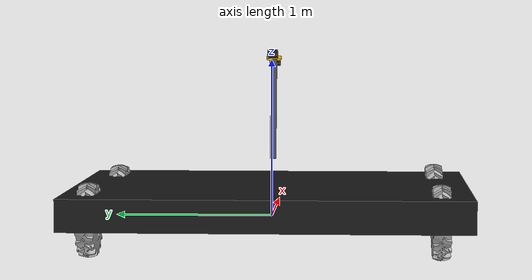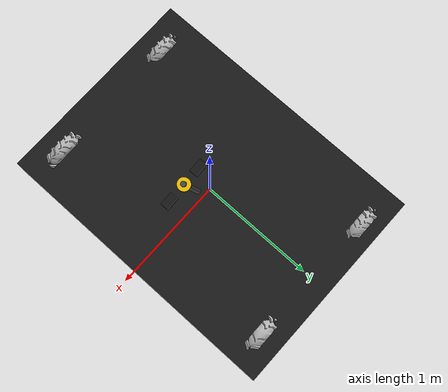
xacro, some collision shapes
<?xml version="1.0"?>
<robot xmlns:xacro="http://www.ros.org/wiki/xacro" name="husky_22">

  <!-- Parametros -->
  <xacro:property name="wheel_radius" value="0.17775" />
  <xacro:property name="wheel_width" value="0.1143" />
  <xacro:property name="wheel_separation" value="0.5709" />
  <xacro:property name="wheel_diameter" value="0.3555" />
  <xacro:property name="base_mass" value="33.855" />
  <xacro:property name="wheel_mass" value="2.6357" />

  <!-- ===================== BASE LINK ===================== -->
  <link name="base_link">
    <inertial>
      <mass value="${base_mass}" />
      <origin xyz="-0.085613 -0.00084 0.238145" rpy="0 0 0" />
      <inertia ixx="2.2343" ixy="0" ixz="0.275174" iyy="3.42518" iyz="0.00239624" izz="2.1241" />
    </inertial>

    <visual name="base">
      <origin xyz="0 0 0" rpy="0 0 1.567" />
      <geometry>
        <mesh filename="package://simple_gazebo_robot/mesh/chassi.dae" scale="0.005 0.005 0.005" />
      </geometry>
      <material name="flat_black">
        <color rgba="0.1 0.1 0.1 1" />
      </material>
    </visual>

    <collision name="collision">

      <origin xyz="0 0 0.1" rpy="0 0 0" />
      <geometry>
        <box size="1.8 2.5 0.2" />
      </geometry>
    </collision>
  </link>

  <!-- ===================== BACK LEFT WHEEL ===================== -->
  <link name="back_left_wheel">
    <inertial>
      <mass value="${wheel_mass}" />
      <origin xyz="0 0 0" rpy="0 0 0" />
      <inertia ixx="0.0246688" ixy="0" ixz="0" iyy="0.0246688" iyz="0" izz="0.0441058" />
    </inertial>

    <visual name="back_left_wheel">
      <origin xyz="0 0 0" rpy="-3.14159 0 0" />
      <geometry>
        <mesh filename="package://simple_gazebo_robot/mesh/roda.dae" scale="0.005 0.005 0.005" />
      </geometry>
      <material name="grey">
        <color rgba="0.7 0.7 0.7 1" />
      </material>
    </visual>

    <collision name="back_left_wheel_collision">
      <origin xyz="0 0 0" rpy="-1.5707 0 0" />
      <geometry>
        <cylinder radius="${wheel_radius}" length="${wheel_width}" />
      </geometry>
    </collision>
  </link>

  <!-- ===================== BACK RIGHT WHEEL ===================== -->
  <link name="back_right_wheel">
    <inertial>
      <mass value="${wheel_mass}" />
      <origin xyz="0 0 0" rpy="0 0 0" />
      <inertia ixx="0.0246688" ixy="0" ixz="0" iyy="0.0246688" iyz="0" izz="0.0441058" />
    </inertial>

    <visual name="back_right_wheel">
      <origin xyz="0 0 0" rpy="-3.14159 0 0" />
      <geometry>
        <mesh filename="package://simple_gazebo_robot/mesh/roda.dae" scale="0.005 0.005 0.005" />
      </geometry>
      <material name="grey">
        <color rgba="0.7 0.7 0.7 1" />
      </material>
    </visual>

    <collision name="back_right_wheel_collision">
      <origin xyz="0 0 0" rpy="-1.5707 0 0" />
      <geometry>
        <cylinder radius="${wheel_radius}" length="${wheel_width}" />
      </geometry>
    </collision>
  </link>

  <!-- ===================== FRONT LEFT WHEEL ===================== -->
  <link name="front_left_wheel">
    <inertial>
      <mass value="${wheel_mass}" />
      <origin xyz="0 0 0" rpy="0 0 0" />
      <inertia ixx="0.0246688" ixy="0" ixz="0" iyy="0.0246688" iyz="0" izz="0.0441058" />
    </inertial>

    <visual name="front_left_wheel">
      <origin xyz="0 0 0" rpy="-3.14159 0 0" />
      <geometry>
        <mesh filename="package://simple_gazebo_robot/mesh/roda.dae" scale="0.005 0.005 0.005" />
      </geometry>
      <material name="grey">
        <color rgba="0.7 0.7 0.7 1" />
      </material>
    </visual>

    <collision name="front_left_wheel_collision">
      <origin xyz="0 0 0" rpy="-1.5707 0 0" />
      <geometry>
        <cylinder radius="${wheel_radius}" length="${wheel_width}" />
      </geometry>
    </collision>
  </link>

  <!-- ===================== FRONT RIGHT WHEEL ===================== -->
  <link name="front_right_wheel">
    <inertial>
      <mass value="${wheel_mass}" />
      <origin xyz="0 0 0" rpy="0 0 0" />
      <inertia ixx="0.0246688" ixy="0" ixz="0" iyy="0.0246688" iyz="0" izz="0.0441058" />
    </inertial>

    <visual name="front_right_wheel">
      <origin xyz="0 0 0" rpy="-3.14159 0 0" />
      <geometry>
        <mesh filename="package://simple_gazebo_robot/mesh/roda.dae" scale="0.005 0.005 0.005" />
      </geometry>
      <material name="grey">
        <color rgba="0.7 0.7 0.7 1" />
      </material>
    </visual>

    <collision name="front_right_wheel_collision">
      <origin xyz="0 0 0" rpy="-1.5707 0 0" />
      <geometry>
        <cylinder radius="${wheel_radius}" length="${wheel_width}" />
      </geometry>
    </collision>
  </link>

  <!-- ===================== JOINTS ===================== -->
  <joint name="back_left_joint" type="continuous">
    <parent link="base_link" />
    <child link="back_left_wheel" />
    <origin xyz="-0.554793 1.09929 0.035" rpy="0 0 0" />
    <axis xyz="0 1 0" />
  </joint>

  <joint name="back_right_joint" type="continuous">
    <parent link="base_link" />
    <child link="back_right_wheel" />
    <origin xyz="-0.58474 -1.05289 0.035" rpy="0 0 0" />
    <axis xyz="0 1 0" />
  </joint>

  <joint name="front_left_joint" type="continuous">
    <parent link="base_link" />
    <child link="front_left_wheel" />
    <origin xyz="0.606687 1.07363 0.035" rpy="0 0 0" />
    <axis xyz="0 1 0" />
  </joint>

  <joint name="front_right_joint" type="continuous">
    <parent link="base_link" />
    <child link="front_right_wheel" />
    <origin xyz="0.571811 -1.05533 0.052809" rpy="0 0 0" />
    <axis xyz="0 1 0" />
  </joint>

  <!-- ===================== GAZEBO PLUGINS ===================== -->
  <gazebo>
    <plugin filename="libignition-gazebo-diff-drive-system.so"
      name="ignition::gazebo::systems::DiffDrive">
      <left_joint>back_left_joint</left_joint>
      <left_joint>front_left_joint</left_joint>
      <right_joint>back_right_joint</right_joint>
      <right_joint>front_right_joint</right_joint>
      <wheel_separation>0.5709</wheel_separation>
      <wheel_radius>0.17775</wheel_radius>
      <odom_publish_frequency>50</odom_publish_frequency>
      <topic>/cmd_vel</topic>
      <odom_topic>odom</odom_topic>
    </plugin>
  </gazebo>

  <!-- ===================== GAZEBO MATERIALS ===================== -->
  <gazebo reference="base_link">
    <material>Gazebo/FlatBlack</material>
  </gazebo>

  <gazebo reference="back_left_wheel">
    <material>Gazebo/Grey</material>
    <mu1>100000</mu1>
    <mu2>100000</mu2>
  </gazebo>

  <gazebo reference="back_right_wheel">
    <material>Gazebo/Grey</material>
    <mu1>100000</mu1>
    <mu2>100000</mu2>
  </gazebo>

  <gazebo reference="front_left_wheel">
    <material>Gazebo/Grey</material>
    <mu1>100000</mu1>
    <mu2>100000</mu2>
  </gazebo>

  <gazebo reference="front_right_wheel">
    <material>Gazebo/Grey</material>
    <mu1>100000</mu1>
    <mu2>100000</mu2>
  </gazebo>

  <!-- ===================== SENSOR MAST (BARRA VERTICAL) ===================== -->
  <!-- Barra vertical de 40cm para montar sensores -->
  <link name="sensor_mast">
    <inertial>
      <mass value="0.5" />
      <inertia ixx="0.002" ixy="0" ixz="0" iyy="0.002" iyz="0" izz="0.0005" />
    </inertial>

    <visual name="mast_visual">
      <geometry>
        <cylinder length="0.70" radius="0.02" />  <!-- 70cm altura, 4cm diâmetro -->
      </geometry>
      <material name="mast_material">
        <color rgba="0.3 0.3 0.3 1" />  <!-- Cinza metálico -->
      </material>
    </visual>

    <collision name="mast_collision">
      <geometry>
        <cylinder length="0.40" radius="0.02" />
      </geometry>
    </collision>
  </link>

  <!-- Joint da barra no centro do chassi, 70cm de altura -->
  <joint name="sensor_mast_joint" type="fixed">
    <parent link="base_link" />
    <child link="sensor_mast" />
    <origin xyz="0.20 0.0 0.70" rpy="0 0.2 0.0" />  <!-- Centro do robô, 70cm altura -->
  </joint>

  <!-- ===================== CÂMERA FRONTAL (OAK-D) ===================== -->
  <link name="front_camera_link">
    <inertial>
      <mass value="0.15" />
      <inertia ixx="0.0001" ixy="0" ixz="0" iyy="0.0001" iyz="0" izz="0.0001" />
    </inertial>

    <visual name="front_camera_visual">
      <geometry>
        <box size="0.11 0.065 0.035" />  <!-- Dimensões OAK-D -->
      </geometry>
      <material name="camera_material">
        <color rgba="0.1 0.1 0.1 1" />  <!-- Preto -->
      </material>
    </visual>

    <collision name="front_camera_collision">
      <geometry>
        <box size="0.11 0.065 0.035" />
      </geometry>
    </collision>
  </link>

  <!-- Câmera frontal montada à frente da barra, no topo -->
  <joint name="front_camera_joint" type="fixed">
    <parent link="sensor_mast" />
    <child link="front_camera_link" />
    <origin xyz="0.15 0.0 0.31" rpy="0 0 0" />  <!-- 15cm à frente, no topo da barra -->
  </joint>

  <!-- ===================== CÂMERA TRASEIRA (OAK-D) ===================== -->
  <link name="rear_camera_link">
    <inertial>
      <mass value="0.15" />
      <inertia ixx="0.0001" ixy="0" ixz="0" iyy="0.0001" iyz="0" izz="0.0001" />
    </inertial>

    <visual name="rear_camera_visual">
      <geometry>
        <box size="0.11 0.065 0.035" />
      </geometry>
      <material name="camera_material">
        <color rgba="0.1 0.1 0.1 1" />
      </material>
    </visual>

    <collision name="rear_camera_collision">
      <geometry>
        <box size="0.11 0.065 0.035" />
      </geometry>
    </collision>
  </link>

  <!-- Câmera traseira montada atrás da barra, no topo -->
  <joint name="rear_camera_joint" type="fixed">
    <parent link="sensor_mast" />
    <child link="rear_camera_link" />
    <origin xyz="-0.15 0.0 0.31" rpy="3.14159 3.14159 3.14159" />  <!-- 15cm atrás, rotacionada 180°
    para não olhar o GPS -->
  </joint>

  <!-- ===================== GPS ANTENNA ===================== -->
  <link name="gps_link">
    <inertial>
      <mass value="0.05" />
      <inertia ixx="0.00001" ixy="0" ixz="0" iyy="0.00001" iyz="0" izz="0.00001" />
    </inertial>

    <visual name="gps_visual">
      <geometry>
        <cylinder length="0.02" radius="0.05" />  <!-- Antena GPS compacta -->
      </geometry>
      <material name="gps_material">
        <color rgba="1.0 0.8 0.0 1" />  <!-- Dourado -->
      </material>
    </visual>

    <collision name="gps_collision">
      <geometry>
        <cylinder length="0.02" radius="0.05" />
      </geometry>
    </collision>
  </link>

  <!-- GPS no centro da barra, no topo -->
  <joint name="gps_joint" type="fixed">
    <parent link="sensor_mast" />
    <child link="gps_link" />
    <origin xyz="0.0 0.0 0.31" rpy="0 0 0" />  <!-- Centro da barra, topo -->
  </joint>

  <!-- ===================== COMPATIBILIDADE (oak_d_link) ===================== -->
  <!-- Link de compatibilidade para manter código existente funcionando -->
  <link name="oak_d_link">
    <inertial>
      <mass value="0.001" />  <!-- Mass mínima para não afetar dinâmica -->
      <inertia ixx="0.000001" ixy="0" ixz="0" iyy="0.000001" iyz="0" izz="0.000001" />
    </inertial>
  </link>

  <!-- Joint de compatibilidade - referencia a câmera frontal -->
  <joint name="oak_d_joint" type="fixed">
    <parent link="front_camera_link" />
    <child link="oak_d_link" />
    <origin xyz="0.0 0.0 0.0" rpy="0 0 0" />
  </joint>

  <!-- ===================== CÂMERA FRONTAL (OAK0) ===================== -->
  <gazebo reference="front_camera_link">
    <sensor name="oak0_camera" type="camera">
      <always_on>true</always_on>
      <update_rate>30</update_rate>
      <visualize>true</visualize>
      <pose>0 0 0 0 0 0</pose>  <!-- Orientada para frente -->

      <camera>
        <horizontal_fov>1.396</horizontal_fov>  <!-- ~80 graus -->
        <image>
          <width>1280</width>
          <height>800</height>
          <format>R8G8B8</format>
        </image>
        <clip>
          <near>0.1</near>
          <far>100</far>
        </clip>
        <distortion>
          <k1>0.05</k1>
          <k2>0.0</k2>
          <k3>0.0</k3>
          <p1>0.0</p1>
          <p2>0.0</p2>
        </distortion>
      </camera>
    </sensor>
  </gazebo>

  <!-- ===================== CÂMERA TRASEIRA (OAK1) ===================== -->
  <gazebo reference="rear_camera_link">
    <sensor name="oak1_camera" type="camera">
      <always_on>true</always_on>
      <update_rate>30</update_rate>
      <visualize>true</visualize>
      <pose>0 0 0 0 0 3.14159</pose>  <!-- Orientada para trás (180°) -->

      <camera>
        <horizontal_fov>1.396</horizontal_fov>  <!-- ~80 graus -->
        <image>
          <width>1280</width>
          <height>800</height>
          <format>R8G8B8</format>
        </image>
        <clip>
          <near>0.1</near>
          <far>100</far>
        </clip>
        <distortion>
          <k1>0.05</k1>
          <k2>0.0</k2>
          <k3>0.0</k3>
        </distortion>
      </camera>
    </sensor>
  </gazebo>

  <!-- ===================== CÂMERA FRONTAL DEPTH ===================== -->
  <gazebo reference="front_camera_link">
    <sensor name="oak0_depth" type="depth">
      <always_on>true</always_on>
      <update_rate>30</update_rate>
      <visualize>true</visualize>
      <pose>0 0 0 0 0 0</pose>

      <camera>
        <horizontal_fov>1.396</horizontal_fov>
        <image>
          <width>1280</width>
          <height>800</height>
          <format>R_FLOAT32</format>
        </image>
        <clip>
          <near>0.1</near>
          <far>1</far>
        </clip>
      </camera>
    </sensor>
  </gazebo>

  <!-- ===================== CÂMERA TRASEIRA DEPTH ===================== -->
  <gazebo reference="rear_camera_link">
    <sensor name="oak1_depth" type="depth">
      <always_on>true</always_on>
      <update_rate>30</update_rate>
      <visualize>true</visualize>
      <pose>0 0 0 0 0 3.14159</pose>

      <camera>
        <horizontal_fov>1.396</horizontal_fov>
        <image>
          <width>1280</width>
          <height>800</height>
          <format>R_FLOAT32</format>
        </image>
        <clip>
          <near>0.1</near>
          <far>1</far>
        </clip>
      </camera>
    </sensor>
  </gazebo>

  <!-- ===================== SENSOR GPS ===================== -->
  <gazebo reference="gps_link">
    <sensor name="gps_sensor" type="gps">
      <always_on>true</always_on>
      <update_rate>10</update_rate>
      <pose>0 0 0 0 0 0</pose>

      <gps>
        <position_sensing>
          <horizontal>
            <noise type="gaussian">
              <mean>0.0</mean>
              <stddev>0.1</stddev>  <!-- 10cm precisão -->
            </noise>
          </horizontal>
          <vertical>
            <noise type="gaussian">
              <mean>0.0</mean>
              <stddev>0.2</stddev>  <!-- 20cm precisão vertical -->
            </noise>
          </vertical>
        </position_sensing>
        <velocity_sensing>
          <horizontal>
            <noise type="gaussian">
              <mean>0.0</mean>
              <stddev>0.05</stddev>
            </noise>
          </horizontal>
          <vertical>
            <noise type="gaussian">
              <mean>0.0</mean>
              <stddev>0.1</stddev>
            </noise>
          </vertical>
        </velocity_sensing>
      </gps>
    </sensor>
  </gazebo>

  <!-- ===================== FRAMES ÓPTICOS CÂMERA FRONTAL ===================== -->
  <link name="front_camera_left_optical" />
  <joint name="front_camera_left_optical_joint" type="fixed">
    <parent link="front_camera_link" />
    <child link="front_camera_left_optical" />
    <origin xyz="0.03 0.035 0" rpy="${-pi/2} 0 ${-pi/2}" />
  </joint>

  <link name="front_camera_right_optical" />
  <joint name="front_camera_right_optical_joint" type="fixed">
    <parent link="front_camera_link" />
    <child link="front_camera_right_optical" />
    <origin xyz="0.03 -0.035 0" rpy="${-pi/2} 0 ${-pi/2}" />
  </joint>

  <link name="front_camera_depth_optical" />
  <joint name="front_camera_depth_optical_joint" type="fixed">
    <parent link="front_camera_link" />
    <child link="front_camera_depth_optical" />
    <origin xyz="0.03 0.0 0" rpy="${-pi/2} 0 ${-pi/2}" />
  </joint>

  <!-- ===================== FRAMES ÓPTICOS CÂMERA TRASEIRA ===================== -->
  <link name="rear_camera_left_optical" />
  <joint name="rear_camera_left_optical_joint" type="fixed">
    <parent link="rear_camera_link" />
    <child link="rear_camera_left_optical" />
    <origin xyz="0.03 0.035 0" rpy="${-pi/2} 0 ${pi/2}" />  <!-- Invertido para trás -->
  </joint>

  <link name="rear_camera_right_optical" />
  <joint name="rear_camera_right_optical_joint" type="fixed">
    <parent link="rear_camera_link" />
    <child link="rear_camera_right_optical" />
    <origin xyz="0.03 -0.035 0" rpy="${-pi/2} 0 ${pi/2}" />  <!-- Invertido para trás -->
  </joint>

  <link name="rear_camera_depth_optical" />
  <joint name="rear_camera_depth_optical_joint" type="fixed">
    <parent link="rear_camera_link" />
    <child link="rear_camera_depth_optical" />
    <origin xyz="0.03 0.0 0" rpy="${-pi/2} 0 ${pi/2}" />  <!-- Invertido para trás -->
  </joint>

  <!-- ===================== FRAMES ÓPTICOS COMPATIBILIDADE ===================== -->
  <!-- Mantém frames originais para compatibilidade -->
  <link name="oak_d_left_optical" />
  <joint name="oak_d_left_optical_joint" type="fixed">
    <parent link="front_camera_link" />
    <child link="oak_d_left_optical" />
    <origin xyz="0.03 0.035 0" rpy="${-pi/2} 0 ${-pi/2}" />
  </joint>

  <link name="oak_d_right_optical" />
  <joint name="oak_d_right_optical_joint" type="fixed">
    <parent link="front_camera_link" />
    <child link="oak_d_right_optical" />
    <origin xyz="0.03 -0.035 0" rpy="${-pi/2} 0 ${-pi/2}" />
  </joint>

  <link name="oak_d_depth_optical" />
  <joint name="oak_d_depth_optical_joint" type="fixed">
    <parent link="front_camera_link" />
    <child link="oak_d_depth_optical" />
    <origin xyz="0.03 0.0 0" rpy="${-pi/2} 0 ${-pi/2}" />
  </joint>

</robot>
